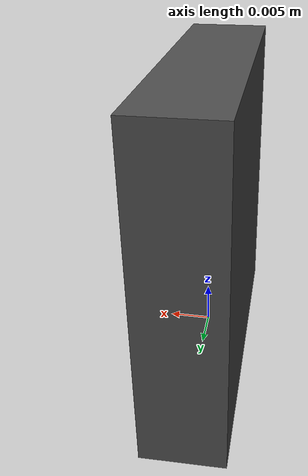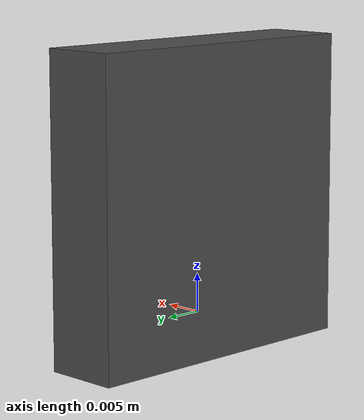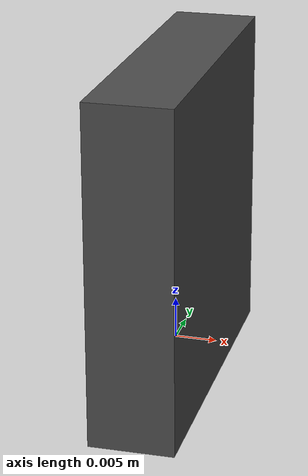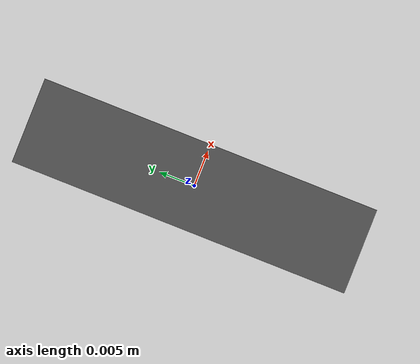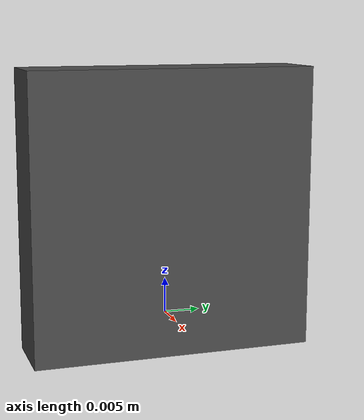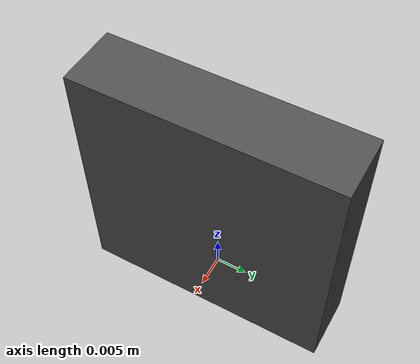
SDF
<?xml version="1.0" ?>
<sdf version="1.6">
  <model name="ros2_depth_camera">
    <link name="link">
      <pose>0 0 0.015 0 0 0</pose>
      <inertial>
        <mass>0.01</mass>
        <inertia>
          <ixx>0.0001</ixx>
          <ixy>0</ixy>
          <ixz>0</ixz>
          <iyy>0.0001</iyy>
          <iyz>0</iyz>
          <izz>0.0001</izz>
        </inertia>
      </inertial>
      <visual name="visual">
        <geometry>
          <box>
            <size>0.01 0.04 0.04</size>
          </box>
        </geometry>
        <material>
          <script>
            <name>Gazebo/DarkGrey</name>
            <uri>file://media/materials/scripts/gazebo.material</uri>
          </script>
        </material>
      </visual>
      <sensor name="camera" type="depth">
        <pose>0 0 0 0 0 0</pose>
        <camera>
          <horizontal_fov>1.5</horizontal_fov>
          <image>
            <width>640</width>
            <height>480</height>
            <format>R8G8B8</format>
          </image>
          <clip>
            <near>0.1</near>
            <far>20.0</far>
          </clip>
        </camera>
        <always_on>1</always_on>
        <update_rate>15</update_rate>
        <visualize>true</visualize>
        <plugin name="camera_plugin" filename="libgazebo_ros_camera.so">
          <ros>
            <namespace>camera</namespace>
            <remapping>custom_cam/image_raw:=color/image_raw</remapping>
            <remapping>custom_cam/image_depth:=depth/image_raw</remapping>
            <remapping>custom_cam/camera_info:=depth/camera_info</remapping>
            <remapping>custom_cam/points:=depth/points</remapping>
          </ros>
          <camera_name>realsense</camera_name>
          <frame_name>camera_link_optical</frame_name>
          <min_depth>0.1</min_depth>
          <max_depth>20.0</max_depth>
        </plugin>
      </sensor>
    </link>
  </model>
</sdf>
